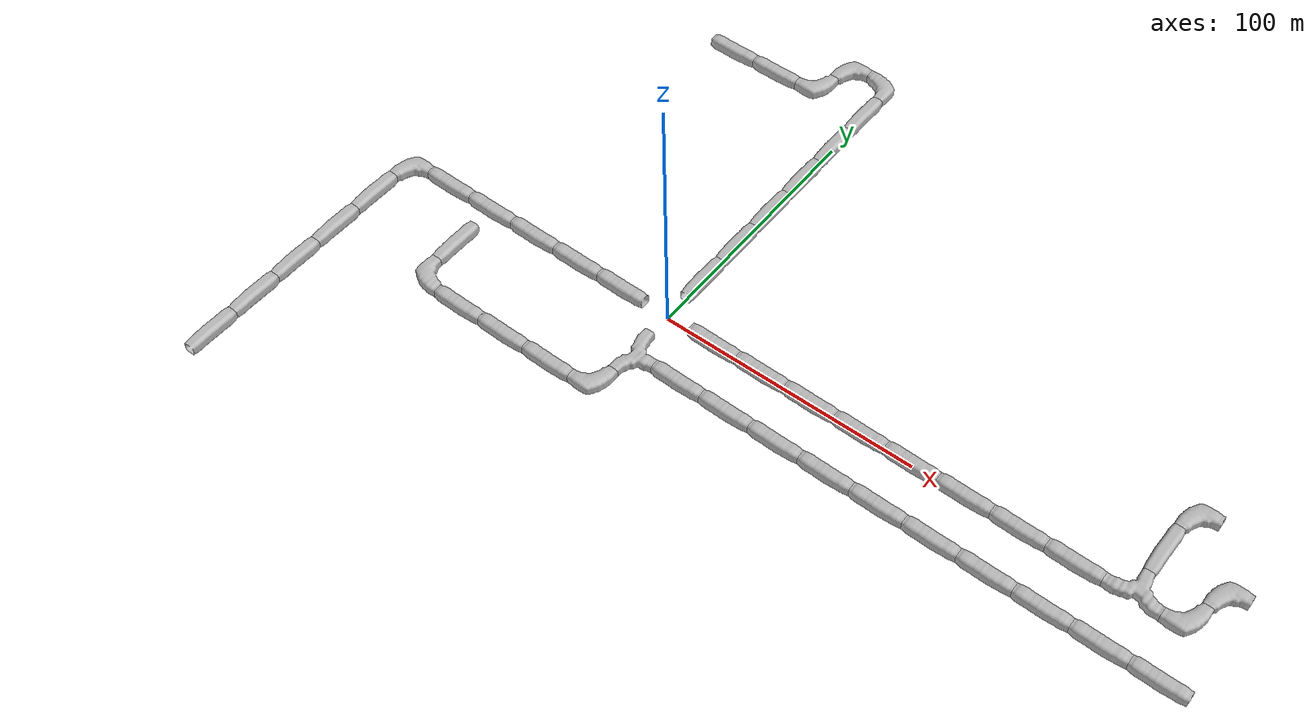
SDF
<sdf version="1.6">
 <world name="cave_1000_16">
  <include>
   <static>true</static>
   <name>cave_1_0</name>
   <pose>20 0 0 0 0 1.5707963267948966</pose>
   <uri>model://cave_straight_20m</uri>
  </include>
  <include>
   <static>true</static>
   <name>cave_2_0</name>
   <pose>40 0 0 0 0 1.5707963267948966</pose>
   <uri>model://cave_straight_20m</uri>
  </include>
  <include>
   <static>true</static>
   <name>cave_3_0</name>
   <pose>60 0 0 0 0 1.5707963267948966</pose>
   <uri>model://cave_straight_20m</uri>
  </include>
  <include>
   <static>true</static>
   <name>cave_4_0</name>
   <pose>80 0 0 0 0 1.5707963267948966</pose>
   <uri>model://cave_straight_20m</uri>
  </include>
  <include>
   <static>true</static>
   <name>cave_5_0</name>
   <pose>100 0 0 0 0 1.5707963267948966</pose>
   <uri>model://cave_straight_20m</uri>
  </include>
  <include>
   <static>true</static>
   <name>cave_6_0</name>
   <pose>120 0 0 0 0 1.5707963267948966</pose>
   <uri>model://cave_straight_20m</uri>
  </include>
  <include>
   <static>true</static>
   <name>cave_7_0</name>
   <pose>140 0 0 0 0 1.5707963267948966</pose>
   <uri>model://cave_straight_20m</uri>
  </include>
  <include>
   <static>true</static>
   <name>cave_8_0</name>
   <pose>160 0 0 0 0 1.5707963267948966</pose>
   <uri>model://cave_straight_20m</uri>
  </include>
  <include>
   <static>true</static>
   <name>cave_9_0</name>
   <pose>180 0 0 0 0 0.0</pose>
   <uri>model://cave_3way_20m</uri>
  </include>
  <include>
   <static>true</static>
   <name>cave_10_0</name>
   <pose>200 0 0 0 0 1.5707963267948966</pose>
   <uri>model://cave_L_20m</uri>
  </include>
  <include>
   <static>true</static>
   <name>cave_10_1</name>
   <pose>200 20 0 0 0 -1.5707963267948966</pose>
   <uri>model://cave_L_20m</uri>
  </include>
  <include>
   <static>true</static>
   <name>cave_9_1</name>
   <pose>180 20 0 0 0 0.0</pose>
   <uri>model://cave_straight_20m</uri>
  </include>
  <include>
   <static>true</static>
   <name>cave_9_2</name>
   <pose>180 40 0 0 0 -1.5707963267948966</pose>
   <uri>model://cave_L_20m</uri>
  </include>
  <include>
   <static>true</static>
   <name>cave_0_-1</name>
   <pose>0 -20 0 0 0 -1.5707963267948966</pose>
   <uri>model://cave_3way_20m</uri>
  </include>
  <include>
   <static>true</static>
   <name>cave_1_-1</name>
   <pose>20 -20 0 0 0 1.5707963267948966</pose>
   <uri>model://cave_straight_20m</uri>
  </include>
  <include>
   <static>true</static>
   <name>cave_2_-1</name>
   <pose>40 -20 0 0 0 1.5707963267948966</pose>
   <uri>model://cave_straight_20m</uri>
  </include>
  <include>
   <static>true</static>
   <name>cave_3_-1</name>
   <pose>60 -20 0 0 0 1.5707963267948966</pose>
   <uri>model://cave_straight_20m</uri>
  </include>
  <include>
   <static>true</static>
   <name>cave_4_-1</name>
   <pose>80 -20 0 0 0 1.5707963267948966</pose>
   <uri>model://cave_straight_20m</uri>
  </include>
  <include>
   <static>true</static>
   <name>cave_5_-1</name>
   <pose>100 -20 0 0 0 1.5707963267948966</pose>
   <uri>model://cave_straight_20m</uri>
  </include>
  <include>
   <static>true</static>
   <name>cave_6_-1</name>
   <pose>120 -20 0 0 0 1.5707963267948966</pose>
   <uri>model://cave_straight_20m</uri>
  </include>
  <include>
   <static>true</static>
   <name>cave_7_-1</name>
   <pose>140 -20 0 0 0 1.5707963267948966</pose>
   <uri>model://cave_straight_20m</uri>
  </include>
  <include>
   <static>true</static>
   <name>cave_8_-1</name>
   <pose>160 -20 0 0 0 1.5707963267948966</pose>
   <uri>model://cave_straight_20m</uri>
  </include>
  <include>
   <static>true</static>
   <name>cave_9_-1</name>
   <pose>180 -20 0 0 0 1.5707963267948966</pose>
   <uri>model://cave_straight_20m</uri>
  </include>
  <include>
   <static>true</static>
   <name>cave_10_-1</name>
   <pose>200 -20 0 0 0 1.5707963267948966</pose>
   <uri>model://cave_straight_20m</uri>
  </include>
  <include>
   <static>true</static>
   <name>cave_0_-2</name>
   <pose>0 -40 0 0 0 1.5707963267948966</pose>
   <uri>model://cave_L_20m</uri>
  </include>
  <include>
   <static>true</static>
   <name>cave_-1_-2</name>
   <pose>-20 -40 0 0 0 1.5707963267948966</pose>
   <uri>model://cave_straight_20m</uri>
  </include>
  <include>
   <static>true</static>
   <name>cave_-2_-2</name>
   <pose>-40 -40 0 0 0 1.5707963267948966</pose>
   <uri>model://cave_straight_20m</uri>
  </include>
  <include>
   <static>true</static>
   <name>cave_-3_-2</name>
   <pose>-60 -40 0 0 0 1.5707963267948966</pose>
   <uri>model://cave_straight_20m</uri>
  </include>
  <include>
   <static>true</static>
   <name>cave_-4_-2</name>
   <pose>-80 -40 0 0 0 0.0</pose>
   <uri>model://cave_L_20m</uri>
  </include>
  <include>
   <static>true</static>
   <name>cave_-4_-1</name>
   <pose>-80 -20 0 0 0 0.0</pose>
   <uri>model://cave_straight_20m</uri>
  </include>
  <include>
   <static>true</static>
   <name>cave_-1_0</name>
   <pose>-20 0 0 0 0 1.5707963267948966</pose>
   <uri>model://cave_straight_20m</uri>
  </include>
  <include>
   <static>true</static>
   <name>cave_-2_0</name>
   <pose>-40 0 0 0 0 1.5707963267948966</pose>
   <uri>model://cave_straight_20m</uri>
  </include>
  <include>
   <static>true</static>
   <name>cave_-3_0</name>
   <pose>-60 0 0 0 0 1.5707963267948966</pose>
   <uri>model://cave_straight_20m</uri>
  </include>
  <include>
   <static>true</static>
   <name>cave_-4_0</name>
   <pose>-80 0 0 0 0 1.5707963267948966</pose>
   <uri>model://cave_straight_20m</uri>
  </include>
  <include>
   <static>true</static>
   <name>cave_-5_0</name>
   <pose>-100 0 0 0 0 1.5707963267948966</pose>
   <uri>model://cave_straight_20m</uri>
  </include>
  <include>
   <static>true</static>
   <name>cave_-6_0</name>
   <pose>-120 0 0 0 0 -1.5707963267948966</pose>
   <uri>model://cave_L_20m</uri>
  </include>
  <include>
   <static>true</static>
   <name>cave_-6_-1</name>
   <pose>-120 -20 0 0 0 0.0</pose>
   <uri>model://cave_straight_20m</uri>
  </include>
  <include>
   <static>true</static>
   <name>cave_-6_-2</name>
   <pose>-120 -40 0 0 0 0.0</pose>
   <uri>model://cave_straight_20m</uri>
  </include>
  <include>
   <static>true</static>
   <name>cave_-6_-3</name>
   <pose>-120 -60 0 0 0 0.0</pose>
   <uri>model://cave_straight_20m</uri>
  </include>
  <include>
   <static>true</static>
   <name>cave_-6_-4</name>
   <pose>-120 -80 0 0 0 0.0</pose>
   <uri>model://cave_straight_20m</uri>
  </include>
  <include>
   <static>true</static>
   <name>cave_-6_-5</name>
   <pose>-120 -100 0 0 0 0.0</pose>
   <uri>model://cave_straight_20m</uri>
  </include>
  <include>
   <static>true</static>
   <name>cave_0_1</name>
   <pose>0 20 0 0 0 0.0</pose>
   <uri>model://cave_straight_20m</uri>
  </include>
  <include>
   <static>true</static>
   <name>cave_0_2</name>
   <pose>0 40 0 0 0 0.0</pose>
   <uri>model://cave_straight_20m</uri>
  </include>
  <include>
   <static>true</static>
   <name>cave_0_3</name>
   <pose>0 60 0 0 0 0.0</pose>
   <uri>model://cave_straight_20m</uri>
  </include>
  <include>
   <static>true</static>
   <name>cave_0_4</name>
   <pose>0 80 0 0 0 0.0</pose>
   <uri>model://cave_straight_20m</uri>
  </include>
  <include>
   <static>true</static>
   <name>cave_0_5</name>
   <pose>0 100 0 0 0 0.0</pose>
   <uri>model://cave_straight_20m</uri>
  </include>
  <include>
   <static>true</static>
   <name>cave_0_6</name>
   <pose>0 120 0 0 0 0.0</pose>
   <uri>model://cave_straight_20m</uri>
  </include>
  <include>
   <static>true</static>
   <name>cave_0_7</name>
   <pose>0 140 0 0 0 3.141592653589793</pose>
   <uri>model://cave_L_20m</uri>
  </include>
  <include>
   <static>true</static>
   <name>cave_-1_7</name>
   <pose>-20 140 0 0 0 -1.5707963267948966</pose>
   <uri>model://cave_L_20m</uri>
  </include>
  <include>
   <static>true</static>
   <name>cave_-1_6</name>
   <pose>-20 120 0 0 0 1.5707963267948966</pose>
   <uri>model://cave_L_20m</uri>
  </include>
  <include>
   <static>true</static>
   <name>cave_-2_6</name>
   <pose>-40 120 0 0 0 1.5707963267948966</pose>
   <uri>model://cave_straight_20m</uri>
  </include>
  <include>
   <static>true</static>
   <name>cave_-3_6</name>
   <pose>-60 120 0 0 0 1.5707963267948966</pose>
   <uri>model://cave_straight_20m</uri>
  </include>
 </world>
</sdf>

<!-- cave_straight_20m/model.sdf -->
<sdf version="1.6">
  <model name="cave_straight_20m">
    <static>true</static>
    <link name="base">
      <pose>0 0 0 0 0 0</pose>
      <collision name="base_collision">
        <pose>0 0 0 0 0 0</pose>
        <geometry>
          <mesh>
            <uri>model://cave_straight_20m/meshes/cave_straight_20m.dae</uri>
          </mesh>
        </geometry>
        <surface>
          <contact>
             <collide_bitmask>0xffff</collide_bitmask>
          </contact>
          <friction>
            <ode>
              <mu>100</mu>
              <mu2>50</mu2>
            </ode>
          </friction>
        </surface>
      </collision>
      <visual name="base_visual">
        <pose>0 0 0 0 0 0</pose>
        <cast_shadows>false</cast_shadows>
        <geometry>
          <mesh>
            <uri>model://cave_straight_20m/meshes/cave_straight_20m.dae</uri>
          </mesh>
        </geometry>
      </visual>
    </link>
  </model>
</sdf>

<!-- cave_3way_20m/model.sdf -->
<sdf version="1.6">
  <model name="cave_3way_20m">
    <static>true</static>
    <link name="base">
      <pose>0 0 0 0 0 0</pose>
      <collision name="base_collision">
        <pose>0 0 0 0 0 0</pose>
        <geometry>
          <mesh>
            <uri>model://cave_3way_20m/meshes/cave_3way_20m.dae</uri>
          </mesh>
        </geometry>
        <surface>
          <contact>
             <collide_bitmask>0xffff</collide_bitmask>
          </contact>
          <friction>
            <ode>
              <mu>100</mu>
              <mu2>50</mu2>
            </ode>
          </friction>
        </surface>
      </collision>
      <visual name="base_visual">
        <cast_shadows>false</cast_shadows>
        <pose>0 0 0 0 0 0</pose>
        <geometry>
          <mesh>
            <uri>model://cave_3way_20m/meshes/cave_3way_20m.dae</uri>
          </mesh>
        </geometry>
      </visual>
    </link>
  </model>
</sdf>

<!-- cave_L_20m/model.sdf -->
<sdf version="1.6">
  <model name="cave_L_20m">
    <static>true</static>
    <link name="base">
      <pose>0 0 0 0 0 0</pose>
      <collision name="base_collision">
        <pose>0 0 0 0 0 0</pose>
        <geometry>
          <mesh>
            <uri>model://cave_L_20m/meshes/cave_L_20m.dae</uri>
          </mesh>
        </geometry>
        <surface>
          <contact>
             <collide_bitmask>0xffff</collide_bitmask>
          </contact>
          <friction>
            <ode>
              <mu>100</mu>
              <mu2>50</mu2>
            </ode>
          </friction>
        </surface>
      </collision>
      <visual name="base_visual">
        <pose>0 0 0 0 0 0</pose>
        <cast_shadows>false</cast_shadows>
        <geometry>
          <mesh>
            <uri>model://cave_L_20m/meshes/cave_L_20m.dae</uri>
          </mesh>
        </geometry>
      </visual>
    </link>
  </model>
</sdf>
